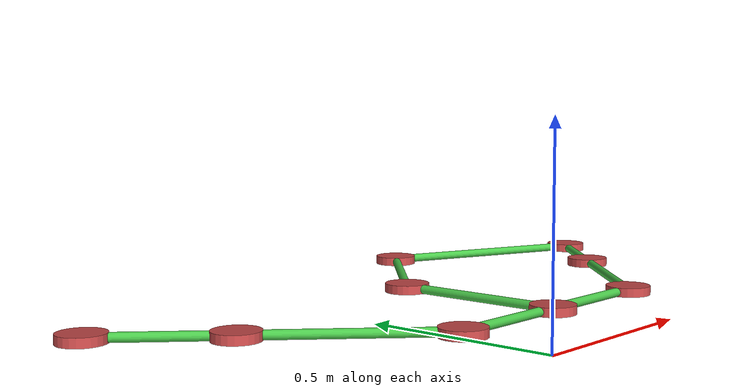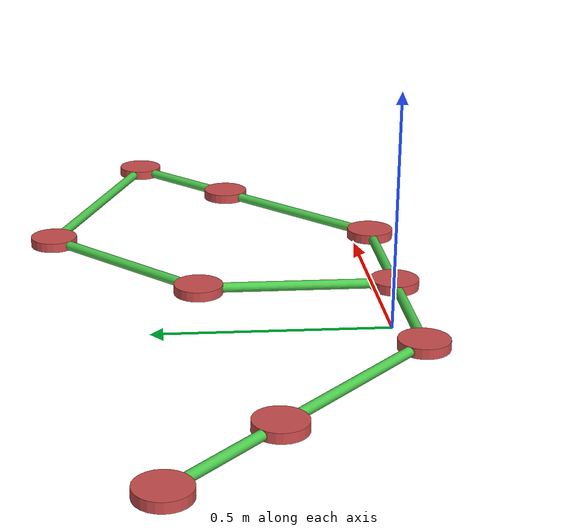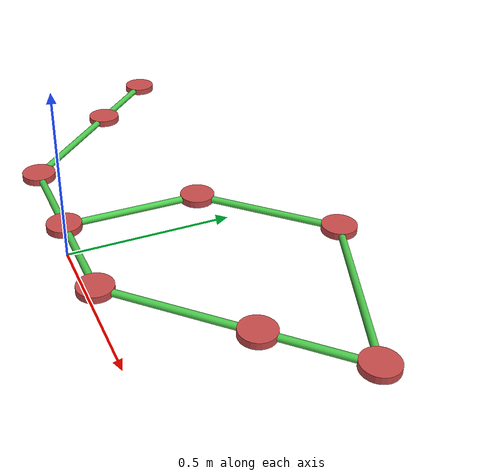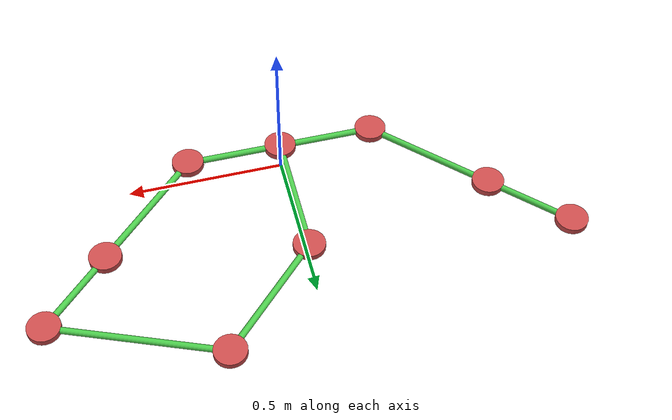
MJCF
<?xml version='1.0' encoding='UTF-8'?>
<mujoco>
  <option gravity="0 0 -9.81" timestep="0.002">
    <flag warmstart="enable"/>
  </option>
  <visual>
    <global offwidth="800" offheight="800"/>
    <quality shadowsize="4096"/>
    <map force="0.1" fogstart="3" fogend="5" znear="0.1" zfar="50"/>
  </visual>
  <asset>
    <texture type="skybox" builtin="gradient" rgb1="0.3 0.5 0.7" rgb2="0 0 0" width="512" height="512"/>
    <material name="arm1" rgba="0.8 0.3 0.3 1"/>
    <material name="arm2" rgba="0.3 0.8 0.3 1"/>
    <material name="arm3" rgba="0.3 0.3 0.8 1"/>
  </asset>
  <option gravity="0 0 -9.81" timestep="0.001">
    <flag warmstart="enable"/>
  </option>
  <default>
    <joint damping="1.0" armature="0.1" frictionloss="0.1"/>
  </default>
  <worldbody>
    <body name="base" pos="0.0 0.0 0.1">
      <geom name="base_geom" type="cylinder" size="0.05 0.01" material="arm1"/>
      <joint name="joint1" type="hinge" axis="0 0 1" pos="0 0 -0.05"/>
      <site name="site_1" pos="0 0 0"/>
      <body name="link2" pos="0.3 0.0 0">
        <geom name="link2_geom" type="cylinder" size="0.05 0.01" material="arm1"/>
        <joint name="joint2" type="hinge" axis="0 0 1" pos="0 0 -0.05"/>
        <site name="site_2" pos="0 0 0"/>
        <body name="link5" pos="0.3 0.3 0">
          <geom name="link5_geom" type="cylinder" size="0.05 0.01" material="arm1"/>
          <joint name="joint5" type="hinge" axis="0 0 1" pos="0 0 -0.05"/>
          <site name="site_5" pos="0 0 0"/>
          <geom name="capsule_5_8" type="capsule" fromto="0 0 0 0.20000000000000007 0.2 0.0" size="0.01" material="arm2"/>
          <site name="conn_site_5_8" pos="0.20000000000000007 0.2 0.0"/>
        </body>
        <geom name="capsule_2_5" type="capsule" fromto="0 0 0 0.3 0.3 0" size="0.01" material="arm2"/>
      </body>
      <geom name="capsule_1_2" type="capsule" fromto="0 0 0 0.3 0.0 0" size="0.01" material="arm2"/>
      <body name="link3" pos="0.0 0.4 0">
        <geom name="link3_geom" type="cylinder" size="0.05 0.01" material="arm1"/>
        <joint name="joint3" type="hinge" axis="0 0 1" pos="0 0 -0.05"/>
        <site name="site_3" pos="0 0 0"/>
        <body name="link6" pos="0.3 0.29999999999999993 0">
          <geom name="link6_geom" type="cylinder" size="0.05 0.01" material="arm1"/>
          <joint name="joint6" type="hinge" axis="0 0 1" pos="0 0 -0.05"/>
          <site name="site_6" pos="0 0 0"/>
          <geom name="capsule_6_8" type="capsule" fromto="0 0 0 0.5 -0.19999999999999996 0.0" size="0.01" material="arm2"/>
          <site name="conn_site_6_8" pos="0.5 -0.19999999999999996 0.0"/>
        </body>
        <geom name="capsule_3_6" type="capsule" fromto="0 0 0 0.3 0.29999999999999993 0" size="0.01" material="arm2"/>
      </body>
      <geom name="capsule_1_3" type="capsule" fromto="0 0 0 0.0 0.4 0" size="0.01" material="arm2"/>
      <body name="link4" pos="-0.3 0.0 0">
        <geom name="link4_geom" type="cylinder" size="0.05 0.01" material="arm1"/>
        <joint name="joint4" type="hinge" axis="0 0 1" pos="0 0 -0.05"/>
        <site name="site_4" pos="0 0 0"/>
        <body name="link7" pos="-0.3 0.3 0">
          <geom name="link7_geom" type="cylinder" size="0.05 0.01" material="arm1"/>
          <joint name="joint7" type="hinge" axis="0 0 1" pos="0 0 -0.05"/>
          <site name="site_7" pos="0 0 0"/>
          <geom name="capsule_7_9" type="capsule" fromto="0 0 0 -0.20000000000000007 0.2 0.0" size="0.01" material="arm2"/>
          <site name="conn_site_7_9" pos="-0.20000000000000007 0.2 0.0"/>
        </body>
        <geom name="capsule_4_7" type="capsule" fromto="0 0 0 -0.3 0.3 0" size="0.01" material="arm2"/>
      </body>
      <geom name="capsule_1_4" type="capsule" fromto="0 0 0 -0.3 0.0 0" size="0.01" material="arm2"/>
    </body>
    <body name="end8" pos="0.8 0.5 0.1">
      <geom name="end8_geom" type="cylinder" size="0.05 0.01" material="arm1"/>
      <site name="site_8" pos="0 0 0"/>
    </body>
    <body name="end9" pos="-0.8 0.5 0.1">
      <geom name="end9_geom" type="cylinder" size="0.05 0.01" material="arm1"/>
      <site name="site_9" pos="0 0 0"/>
    </body>
  </worldbody>
  <tendon>
    <spatial name="tendon_5_8" limited="true" range="0 0.0001" width="0.003" rgba="0.8 0.8 0.8 1">
      <site site="conn_site_5_8"/>
      <site site="site_8"/>
    </spatial>
    <spatial name="tendon_6_8" limited="true" range="0 0.0001" width="0.003" rgba="0.8 0.8 0.8 1">
      <site site="conn_site_6_8"/>
      <site site="site_8"/>
    </spatial>
    <spatial name="tendon_7_9" limited="true" range="0 0.0001" width="0.003" rgba="0.8 0.8 0.8 1">
      <site site="conn_site_7_9"/>
      <site site="site_9"/>
    </spatial>
  </tendon>
  <actuator>
    <position name="pos_joint1" joint="joint1" kp="10.0" ctrlrange="-3.14159 3.14159"/>
    <velocity name="vel_joint1" joint="joint1" kv="1.0"/>
  </actuator>
</mujoco>
